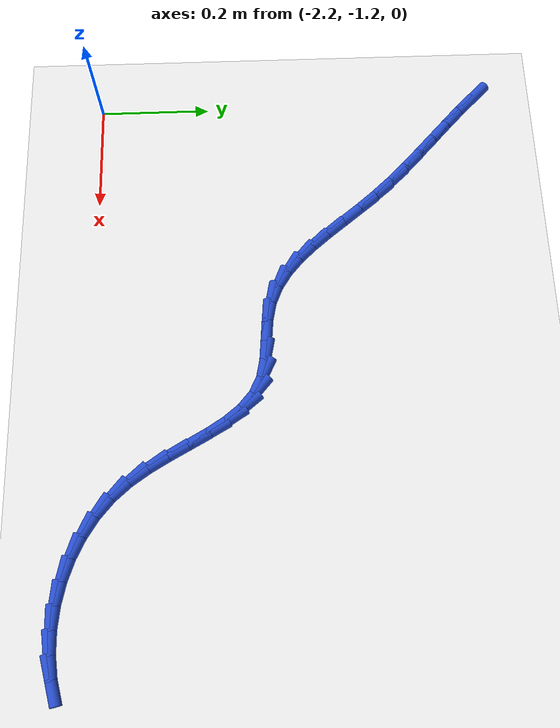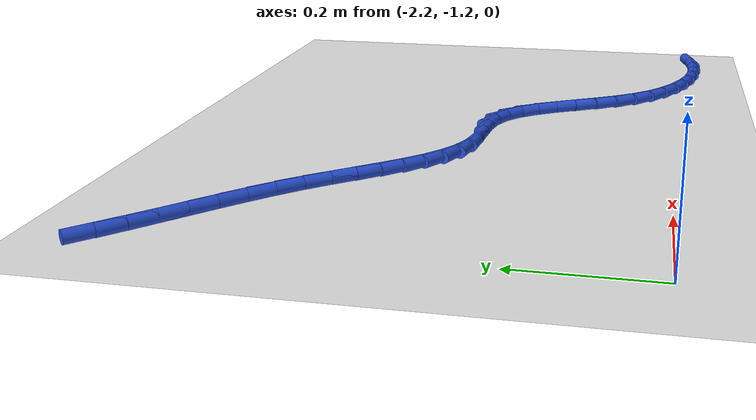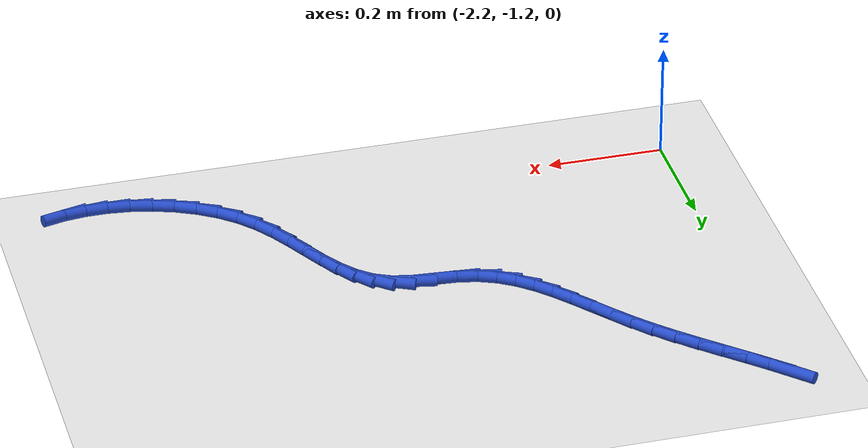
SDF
<sdf version="1.6">
 <world name="default">
  <model name="ground_plane">
   <static>1</static>
   <link name="link">
    <collision name="collision">
     <geometry><plane><normal>0 0 1</normal><size>100 100</size></plane></geometry>
     <surface><friction><ode><mu>100</mu><mu2>50</mu2></ode></friction></surface>
    </collision>
    <visual name="visual">
     <cast_shadows>0</cast_shadows>
     <geometry><plane><normal>0 0 1</normal><size>100 100</size></plane></geometry>
     <material>
      <script><uri>file://media/materials/scripts/gazebo.material</uri><name>Gazebo/WhiteGlow</name></script>
     </material>
    </visual>
   </link>
  </model>
  <model name="line">
   <link name="link_133">
    <pose>-2.20363477222324 -0.4935837267590626 0.01 0 1.57 -0.7768134009816731</pose>
    <collision name="collision">
     <geometry><cylinder><radius>0.01</radius><length>0.08</length></cylinder></geometry>
    </collision>
    <visual name="visual">
     <material>
      <script><name>Gazebo/Blue</name><uri>file://media/materials/scripts/gazebo.material</uri></script>
     </material>
     <geometry><cylinder><radius>0.01</radius><length>0.08</length></cylinder></geometry>
    </visual>
   </link>
   <link name="link_134">
    <pose>-2.176006665487127 -0.5207414981930096 0.01 0 1.57 -0.751681200562844</pose>
    <collision name="collision">
     <geometry><cylinder><radius>0.01</radius><length>0.08</length></cylinder></geometry>
    </collision>
    <visual name="visual">
     <material>
      <script><name>Gazebo/Blue</name><uri>file://media/materials/scripts/gazebo.material</uri></script>
     </material>
     <geometry><cylinder><radius>0.01</radius><length>0.08</length></cylinder></geometry>
    </visual>
   </link>
   <link name="link_135">
    <pose>-2.1466985867264516 -0.5481369802771123 0.01 0 1.57 -0.7404942256735157</pose>
    <collision name="collision">
     <geometry><cylinder><radius>0.01</radius><length>0.08</length></cylinder></geometry>
    </collision>
    <visual name="visual">
     <material>
      <script><name>Gazebo/Blue</name><uri>file://media/materials/scripts/gazebo.material</uri></script>
     </material>
     <geometry><cylinder><radius>0.01</radius><length>0.08</length></cylinder></geometry>
    </visual>
   </link>
   <link name="link_136">
    <pose>-2.1163539707635035 -0.5758718445703208 0.01 0 1.57 -0.7419415445124173</pose>
    <collision name="collision">
     <geometry><cylinder><radius>0.01</radius><length>0.08</length></cylinder></geometry>
    </collision>
    <visual name="visual">
     <material>
      <script><name>Gazebo/Blue</name><uri>file://media/materials/scripts/gazebo.material</uri></script>
     </material>
     <geometry><cylinder><radius>0.01</radius><length>0.08</length></cylinder></geometry>
    </visual>
   </link>
   <link name="link_137">
    <pose>-2.0856162524205684 -0.6040477626315867 0.01 0 1.57 -0.7555326813265645</pose>
    <collision name="collision">
     <geometry><cylinder><radius>0.01</radius><length>0.08</length></cylinder></geometry>
    </collision>
    <visual name="visual">
     <material>
      <script><name>Gazebo/Blue</name><uri>file://media/materials/scripts/gazebo.material</uri></script>
     </material>
     <geometry><cylinder><radius>0.01</radius><length>0.08</length></cylinder></geometry>
    </visual>
   </link>
   <link name="link_138">
    <pose>-2.055128866519934 -0.6327664060198616 0.01 0 1.57 -0.7814872025245049</pose>
    <collision name="collision">
     <geometry><cylinder><radius>0.01</radius><length>0.08</length></cylinder></geometry>
    </collision>
    <visual name="visual">
     <material>
      <script><name>Gazebo/Blue</name><uri>file://media/materials/scripts/gazebo.material</uri></script>
     </material>
     <geometry><cylinder><radius>0.01</radius><length>0.08</length></cylinder></geometry>
    </visual>
   </link>
   <link name="link_139">
    <pose>-2.025535247883887 -0.6621294462940972 0.01 0 1.57 -0.8206719261011386</pose>
    <collision name="collision">
     <geometry><cylinder><radius>0.01</radius><length>0.08</length></cylinder></geometry>
    </collision>
    <visual name="visual">
     <material>
      <script><name>Gazebo/Blue</name><uri>file://media/materials/scripts/gazebo.material</uri></script>
     </material>
     <geometry><cylinder><radius>0.01</radius><length>0.08</length></cylinder></geometry>
    </visual>
   </link>
   <link name="link_140">
    <pose>-1.99747875915614 -0.6922385040724874 0.01 0 1.57 -0.8663621550678389</pose>
    <collision name="collision">
     <geometry><cylinder><radius>0.01</radius><length>0.08</length></cylinder></geometry>
    </collision>
    <visual name="visual">
     <material>
      <script><name>Gazebo/Blue</name><uri>file://media/materials/scripts/gazebo.material</uri></script>
     </material>
     <geometry><cylinder><radius>0.01</radius><length>0.08</length></cylinder></geometry>
    </visual>
   </link>
   <link name="link_141">
    <pose>-1.9713314818492782 -0.7230037405860545 0.01 0 1.57 -0.8924202754505098</pose>
    <collision name="collision">
     <geometry><cylinder><radius>0.01</radius><length>0.08</length></cylinder></geometry>
    </collision>
    <visual name="visual">
     <material>
      <script><name>Gazebo/Blue</name><uri>file://media/materials/scripts/gazebo.material</uri></script>
     </material>
     <geometry><cylinder><radius>0.01</radius><length>0.08</length></cylinder></geometry>
    </visual>
   </link>
   <link name="link_142">
    <pose>-1.9465816477031326 -0.7537115311978434 0.01 0 1.57 -0.8920602077748978</pose>
    <collision name="collision">
     <geometry><cylinder><radius>0.01</radius><length>0.08</length></cylinder></geometry>
    </collision>
    <visual name="visual">
     <material>
      <script><name>Gazebo/Blue</name><uri>file://media/materials/scripts/gazebo.material</uri></script>
     </material>
     <geometry><cylinder><radius>0.01</radius><length>0.08</length></cylinder></geometry>
    </visual>
   </link>
   <link name="link_143">
    <pose>-1.9225377877128464 -0.7835214256626837 0.01 0 1.57 -0.8628269952642701</pose>
    <collision name="collision">
     <geometry><cylinder><radius>0.01</radius><length>0.08</length></cylinder></geometry>
    </collision>
    <visual name="visual">
     <material>
      <script><name>Gazebo/Blue</name><uri>file://media/materials/scripts/gazebo.material</uri></script>
     </material>
     <geometry><cylinder><radius>0.01</radius><length>0.08</length></cylinder></geometry>
    </visual>
   </link>
   <link name="link_144">
    <pose>-1.8985084328735642 -0.811592973735403 0.01 0 1.57 -0.8010631629894803</pose>
    <collision name="collision">
     <geometry><cylinder><radius>0.01</radius><length>0.08</length></cylinder></geometry>
    </collision>
    <visual name="visual">
     <material>
      <script><name>Gazebo/Blue</name><uri>file://media/materials/scripts/gazebo.material</uri></script>
     </material>
     <geometry><cylinder><radius>0.01</radius><length>0.08</length></cylinder></geometry>
    </visual>
   </link>
   <link name="link_145">
    <pose>-1.87380211418043 -0.8370857251708307 0.01 0 1.57 -0.702486042242557</pose>
    <collision name="collision">
     <geometry><cylinder><radius>0.01</radius><length>0.08</length></cylinder></geometry>
    </collision>
    <visual name="visual">
     <material>
      <script><name>Gazebo/Blue</name><uri>file://media/materials/scripts/gazebo.material</uri></script>
     </material>
     <geometry><cylinder><radius>0.01</radius><length>0.08</length></cylinder></geometry>
    </visual>
   </link>
   <link name="link_146">
    <pose>-1.8477273626285864 -0.8591592297237961 0.01 0 1.57 -0.5644474554904166</pose>
    <collision name="collision">
     <geometry><cylinder><radius>0.01</radius><length>0.08</length></cylinder></geometry>
    </collision>
    <visual name="visual">
     <material>
      <script><name>Gazebo/Blue</name><uri>file://media/materials/scripts/gazebo.material</uri></script>
     </material>
     <geometry><cylinder><radius>0.01</radius><length>0.08</length></cylinder></geometry>
    </visual>
   </link>
   <link name="link_147">
    <pose>-1.8195927092131774 -0.8769730371491279 0.01 0 1.57 -0.39049313085919224</pose>
    <collision name="collision">
     <geometry><cylinder><radius>0.01</radius><length>0.08</length></cylinder></geometry>
    </collision>
    <visual name="visual">
     <material>
      <script><name>Gazebo/Blue</name><uri>file://media/materials/scripts/gazebo.material</uri></script>
     </material>
     <geometry><cylinder><radius>0.01</radius><length>0.08</length></cylinder></geometry>
    </visual>
   </link>
   <link name="link_148">
    <pose>-1.7887066849293451 -0.889686697201655 0.01 0 1.57 -0.1993417676542245</pose>
    <collision name="collision">
     <geometry><cylinder><radius>0.01</radius><length>0.08</length></cylinder></geometry>
    </collision>
    <visual name="visual">
     <material>
      <script><name>Gazebo/Blue</name><uri>file://media/materials/scripts/gazebo.material</uri></script>
     </material>
     <geometry><cylinder><radius>0.01</radius><length>0.08</length></cylinder></geometry>
    </visual>
   </link>
   <link name="link_149">
    <pose>-1.7544721856976775 -0.8966029166651516 0.01 0 1.57 -0.07979158205353312</pose>
    <collision name="collision">
     <geometry><cylinder><radius>0.01</radius><length>0.08</length></cylinder></geometry>
    </collision>
    <visual name="visual">
     <material>
      <script><name>Gazebo/Blue</name><uri>file://media/materials/scripts/gazebo.material</uri></script>
     </material>
     <geometry><cylinder><radius>0.01</radius><length>0.08</length></cylinder></geometry>
    </visual>
   </link>
   <link name="link_150">
    <pose>-1.7179398304909381 -0.8995240931308799 0.01 0 1.57 -0.07828865901560127</pose>
    <collision name="collision">
     <geometry><cylinder><radius>0.01</radius><length>0.08</length></cylinder></geometry>
    </collision>
    <visual name="visual">
     <material>
      <script><name>Gazebo/Blue</name><uri>file://media/materials/scripts/gazebo.material</uri></script>
     </material>
     <geometry><cylinder><radius>0.01</radius><length>0.08</length></cylinder></geometry>
    </visual>
   </link>
   <link name="link_151">
    <pose>-1.681561197766039 -0.9023779604470338 0.01 0 1.57 -0.19842774647211545</pose>
    <collision name="collision">
     <geometry><cylinder><radius>0.01</radius><length>0.08</length></cylinder></geometry>
    </collision>
    <visual name="visual">
     <material>
      <script><name>Gazebo/Blue</name><uri>file://media/materials/scripts/gazebo.material</uri></script>
     </material>
     <geometry><cylinder><radius>0.01</radius><length>0.08</length></cylinder></geometry>
    </visual>
   </link>
   <link name="link_152">
    <pose>-1.6478324706251442 -0.9091599202786558 0.01 0 1.57 -0.44855641017213366</pose>
    <collision name="collision">
     <geometry><cylinder><radius>0.01</radius><length>0.08</length></cylinder></geometry>
    </collision>
    <visual name="visual">
     <material>
      <script><name>Gazebo/Blue</name><uri>file://media/materials/scripts/gazebo.material</uri></script>
     </material>
     <geometry><cylinder><radius>0.01</radius><length>0.08</length></cylinder></geometry>
    </visual>
   </link>
   <link name="link_153">
    <pose>-1.618772991788839 -0.9231455460870416 0.01 0 1.57 -0.7004092461061279</pose>
    <collision name="collision">
     <geometry><cylinder><radius>0.01</radius><length>0.08</length></cylinder></geometry>
    </collision>
    <visual name="visual">
     <material>
      <script><name>Gazebo/Blue</name><uri>file://media/materials/scripts/gazebo.material</uri></script>
     </material>
     <geometry><cylinder><radius>0.01</radius><length>0.08</length></cylinder></geometry>
    </visual>
   </link>
   <link name="link_154">
    <pose>-1.5940189751434986 -0.9440128902042179 0.01 0 1.57 -0.8843245487853791</pose>
    <collision name="collision">
     <geometry><cylinder><radius>0.01</radius><length>0.08</length></cylinder></geometry>
    </collision>
    <visual name="visual">
     <material>
      <script><name>Gazebo/Blue</name><uri>file://media/materials/scripts/gazebo.material</uri></script>
     </material>
     <geometry><cylinder><radius>0.01</radius><length>0.08</length></cylinder></geometry>
    </visual>
   </link>
   <link name="link_155">
    <pose>-1.57246365436552 -0.9703184176750882 0.01 0 1.57 -0.9998048655497166</pose>
    <collision name="collision">
     <geometry><cylinder><radius>0.01</radius><length>0.08</length></cylinder></geometry>
    </collision>
    <visual name="visual">
     <material>
      <script><name>Gazebo/Blue</name><uri>file://media/materials/scripts/gazebo.material</uri></script>
     </material>
     <geometry><cylinder><radius>0.01</radius><length>0.08</length></cylinder></geometry>
    </visual>
   </link>
   <link name="link_156">
    <pose>-1.55300001980807 -1.0006182262289305 0.01 0 1.57 -1.0583900414862093</pose>
    <collision name="collision">
     <geometry><cylinder><radius>0.01</radius><length>0.08</length></cylinder></geometry>
    </collision>
    <visual name="visual">
     <material>
      <script><name>Gazebo/Blue</name><uri>file://media/materials/scripts/gazebo.material</uri></script>
     </material>
     <geometry><cylinder><radius>0.01</radius><length>0.08</length></cylinder></geometry>
    </visual>
   </link>
   <link name="link_157">
    <pose>-1.5345210618243172 -1.0334684135950205 0.01 0 1.57 -1.069647582269538</pose>
    <collision name="collision">
     <geometry><cylinder><radius>0.01</radius><length>0.08</length></cylinder></geometry>
    </collision>
    <visual name="visual">
     <material>
      <script><name>Gazebo/Blue</name><uri>file://media/materials/scripts/gazebo.material</uri></script>
     </material>
     <geometry><cylinder><radius>0.01</radius><length>0.08</length></cylinder></geometry>
    </visual>
   </link>
   <link name="link_158">
    <pose>-1.5159197707674277 -1.067425077502636 0.01 0 1.57 -1.0378662947283082</pose>
    <collision name="collision">
     <geometry><cylinder><radius>0.01</radius><length>0.08</length></cylinder></geometry>
    </collision>
    <visual name="visual">
     <material>
      <script><name>Gazebo/Blue</name><uri>file://media/materials/scripts/gazebo.material</uri></script>
     </material>
     <geometry><cylinder><radius>0.01</radius><length>0.08</length></cylinder></geometry>
    </visual>
   </link>
   <link name="link_159">
    <pose>-1.4960891369905696 -1.1010443156810539 0.01 0 1.57 -0.9625949370231383</pose>
    <collision name="collision">
     <geometry><cylinder><radius>0.01</radius><length>0.08</length></cylinder></geometry>
    </collision>
    <visual name="visual">
     <material>
      <script><name>Gazebo/Blue</name><uri>file://media/materials/scripts/gazebo.material</uri></script>
     </material>
     <geometry><cylinder><radius>0.01</radius><length>0.08</length></cylinder></geometry>
    </visual>
   </link>
   <link name="link_160">
    <pose>-1.4739221508469096 -1.1328822258595526 0.01 0 1.57 -0.8420907366655631</pose>
    <collision name="collision">
     <geometry><cylinder><radius>0.01</radius><length>0.08</length></cylinder></geometry>
    </collision>
    <visual name="visual">
     <material>
      <script><name>Gazebo/Blue</name><uri>file://media/materials/scripts/gazebo.material</uri></script>
     </material>
     <geometry><cylinder><radius>0.01</radius><length>0.08</length></cylinder></geometry>
    </visual>
   </link>
   <link name="link_161">
    <pose>-1.4483532729702164 -1.1615279671049408 0.01 0 1.57 -0.7030769977063503</pose>
    <collision name="collision">
     <geometry><cylinder><radius>0.01</radius><length>0.08</length></cylinder></geometry>
    </collision>
    <visual name="visual">
     <material>
      <script><name>Gazebo/Blue</name><uri>file://media/materials/scripts/gazebo.material</uri></script>
     </material>
     <geometry><cylinder><radius>0.01</radius><length>0.08</length></cylinder></geometry>
    </visual>
   </link>
   <link name="link_162">
    <pose>-1.4191771968553686 -1.1862565016318942 0.01 0 1.57 -0.5723837240338016</pose>
    <collision name="collision">
     <geometry><cylinder><radius>0.01</radius><length>0.08</length></cylinder></geometry>
    </collision>
    <visual name="visual">
     <material>
      <script><name>Gazebo/Blue</name><uri>file://media/materials/scripts/gazebo.material</uri></script>
     </material>
     <geometry><cylinder><radius>0.01</radius><length>0.08</length></cylinder></geometry>
    </visual>
   </link>
   <link name="link_163">
    <pose>-1.3869998621841253 -1.20698954117351 0.01 0 1.57 -0.44998351503711914</pose>
    <collision name="collision">
     <geometry><cylinder><radius>0.01</radius><length>0.08</length></cylinder></geometry>
    </collision>
    <visual name="visual">
     <material>
      <script><name>Gazebo/Blue</name><uri>file://media/materials/scripts/gazebo.material</uri></script>
     </material>
     <geometry><cylinder><radius>0.01</radius><length>0.08</length></cylinder></geometry>
    </visual>
   </link>
   <link name="link_164">
    <pose>-1.3524588710247856 -1.2236740396564116 0.01 0 1.57 -0.3339565642633435</pose>
    <collision name="collision">
     <geometry><cylinder><radius>0.01</radius><length>0.08</length></cylinder></geometry>
    </collision>
    <visual name="visual">
     <material>
      <script><name>Gazebo/Blue</name><uri>file://media/materials/scripts/gazebo.material</uri></script>
     </material>
     <geometry><cylinder><radius>0.01</radius><length>0.08</length></cylinder></geometry>
    </visual>
   </link>
   <link name="link_165">
    <pose>-1.31619182544565 -1.2362569510072245 0.01 0 1.57 -0.22190781825200498</pose>
    <collision name="collision">
     <geometry><cylinder><radius>0.01</radius><length>0.08</length></cylinder></geometry>
    </collision>
    <visual name="visual">
     <material>
      <script><name>Gazebo/Blue</name><uri>file://media/materials/scripts/gazebo.material</uri></script>
     </material>
     <geometry><cylinder><radius>0.01</radius><length>0.08</length></cylinder></geometry>
    </visual>
   </link>
   <link name="link_166">
    <pose>-1.2788363275150207 -1.2446852291525738 0.01 0 1.57 -0.11117696904611599</pose>
    <collision name="collision">
     <geometry><cylinder><radius>0.01</radius><length>0.08</length></cylinder></geometry>
    </collision>
    <visual name="visual">
     <material>
      <script><name>Gazebo/Blue</name><uri>file://media/materials/scripts/gazebo.material</uri></script>
     </material>
     <geometry><cylinder><radius>0.01</radius><length>0.08</length></cylinder></geometry>
    </visual>
   </link>
   <link name="link_167">
    <pose>-1.2410299793011976 -1.248905828019084 0.01 0 1.57 0.0010666374521949894</pose>
    <collision name="collision">
     <geometry><cylinder><radius>0.01</radius><length>0.08</length></cylinder></geometry>
    </collision>
    <visual name="visual">
     <material>
      <script><name>Gazebo/Blue</name><uri>file://media/materials/scripts/gazebo.material</uri></script>
     </material>
     <geometry><cylinder><radius>0.01</radius><length>0.08</length></cylinder></geometry>
    </visual>
   </link>
   <link name="link_168">
    <pose>-1.203410382872481 -1.248865701533379 0.01 0 1.57 0.11778008043144998</pose>
    <collision name="collision">
     <geometry><cylinder><radius>0.01</radius><length>0.08</length></cylinder></geometry>
    </collision>
    <visual name="visual">
     <material>
      <script><name>Gazebo/Blue</name><uri>file://media/materials/scripts/gazebo.material</uri></script>
     </material>
     <geometry><cylinder><radius>0.01</radius><length>0.08</length></cylinder></geometry>
    </visual>
   </link>
   <link name="link_169">
    <pose>-1.1666151402971698 -1.2445118036220848 0.01 0 1.57 0.2419769165963999</pose>
    <collision name="collision">
     <geometry><cylinder><radius>0.01</radius><length>0.08</length></cylinder></geometry>
    </collision>
    <visual name="visual">
     <material>
      <script><name>Gazebo/Blue</name><uri>file://media/materials/scripts/gazebo.material</uri></script>
     </material>
     <geometry><cylinder><radius>0.01</radius><length>0.08</length></cylinder></geometry>
    </visual>
   </link>
  </model>
 </world>
</sdf>
